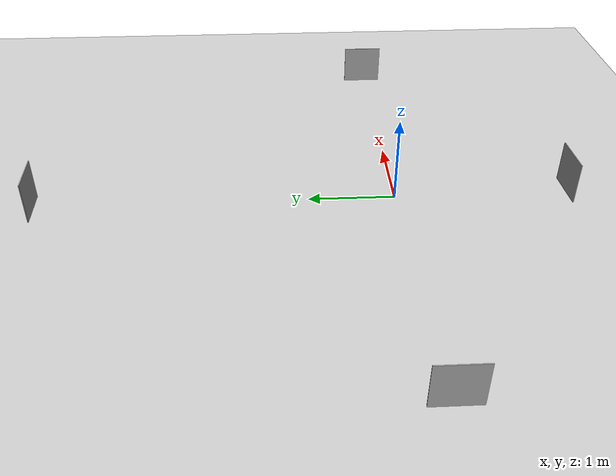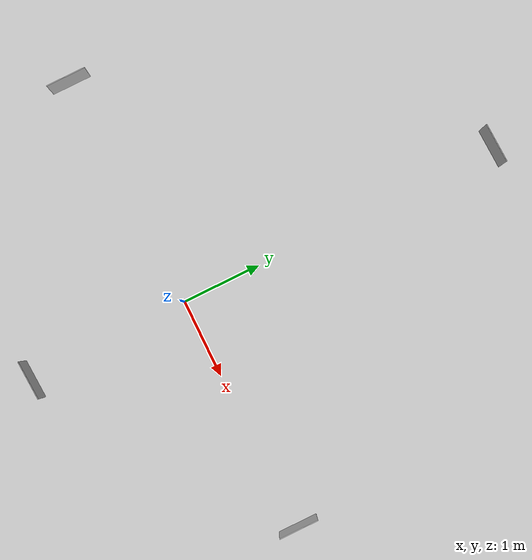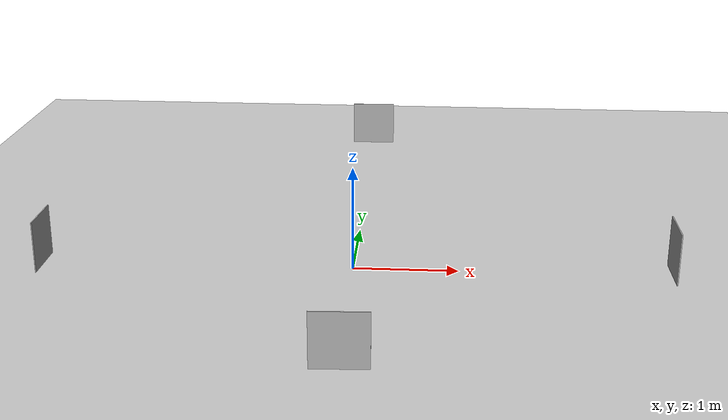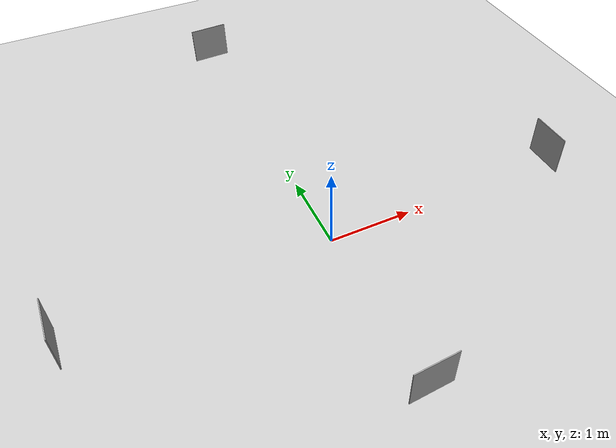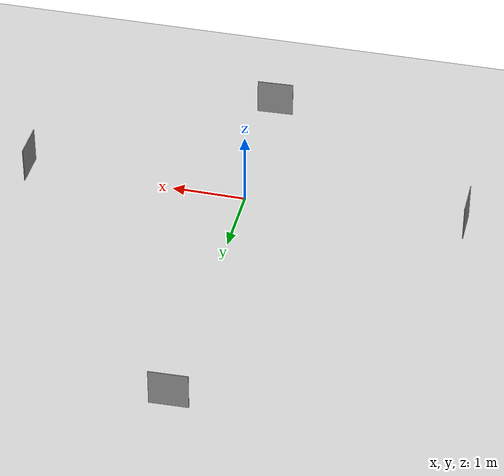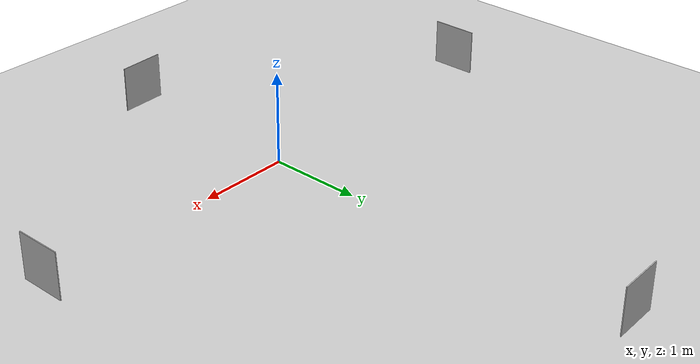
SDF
<sdf version="1.6">
 <world name="default">
  <light name="sun" type="directional">
   <pose>0 0 10 0 -0 0</pose>
   <diffuse>0.8 0.8 0.8 1</diffuse>
   <specular>0.2 0.2 0.2 1</specular>
   <attenuation>
    <range>1000</range>
    <constant>0.9</constant>
    <linear>0.01</linear>
    <quadratic>0.001</quadratic>
   </attenuation>
   <direction>-0.5 0.1 -0.9</direction>
  </light>
  <model name="ground_plane">
   <static>1</static>
   <link name="link">
    <collision name="collision">
     <geometry><plane><normal>0 0 1</normal><size>100 100</size></plane></geometry>
     <surface>
      <contact><collide_bitmask>65535</collide_bitmask></contact>
      <friction><ode><mu>100</mu><mu2>50</mu2></ode></friction>
     </surface>
    </collision>
    <visual name="visual">
     <cast_shadows>0</cast_shadows>
     <geometry><plane><normal>0 0 1</normal><size>100 100</size></plane></geometry>
     <material>
      <script><uri>file://media/materials/scripts/gazebo.material</uri><name>Gazebo/Grey</name></script>
     </material>
    </visual>
   </link>
  </model>
  <gravity>0 0 -9.8</gravity>
  <magnetic_field>6e-06 2.3e-05 -4.2e-05</magnetic_field>
  <atmosphere type="adiabatic"/>
  <physics name="default_physics" default="0" type="ode">
   <max_step_size>0.001</max_step_size>
   <real_time_factor>1</real_time_factor>
   <real_time_update_rate>1000</real_time_update_rate>
  </physics>
  <scene><ambient>0.4 0.4 0.4 1</ambient><background>0.7 0.7 0.7 1</background><shadows>1</shadows></scene>
  <spherical_coordinates>
   <surface_model>EARTH_WGS84</surface_model>
   <latitude_deg>0</latitude_deg>
   <longitude_deg>0</longitude_deg>
   <elevation>0</elevation>
   <heading_deg>0</heading_deg>
  </spherical_coordinates>
  <model name="Marker0">
   <static>1</static>
   <link name="link">
    <visual name="visual"><geometry><mesh><uri>model://marker0/meshes/Marker0.dae</uri></mesh></geometry></visual>
   </link>
   <pose>-2.98274 -0.071893 0 0 -0 0</pose>
  </model>
  <model name="Marker0_clone">
   <static>1</static>
   <link name="link">
    <visual name="visual"><geometry><mesh><uri>model://marker0/meshes/Marker0.dae</uri></mesh></geometry></visual>
   </link>
   <pose>-0.040468 4.14552 0 0 0 -1.52945</pose>
  </model>
  <model name="Marker0_clone_0">
   <static>1</static>
   <link name="link">
    <visual name="visual"><geometry><mesh><uri>model://marker0/meshes/Marker0.dae</uri></mesh></geometry></visual>
   </link>
   <pose>3.00716 0.048675 0 0 -0 0</pose>
  </model>
  <model name="Marker0_clone_clone">
   <static>1</static>
   <link name="link">
    <visual name="visual"><geometry><mesh><uri>model://marker0/meshes/Marker0.dae</uri></mesh></geometry></visual>
   </link>
   <pose>0.041575 -2.03394 0 0 0 -1.52945</pose>
  </model>
 </world>
</sdf>
